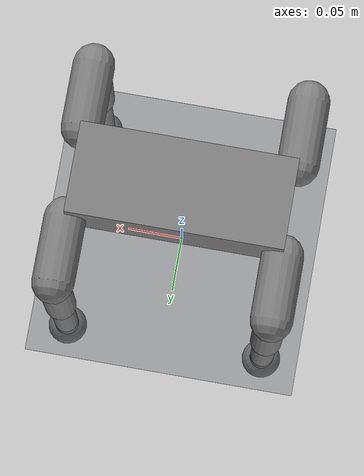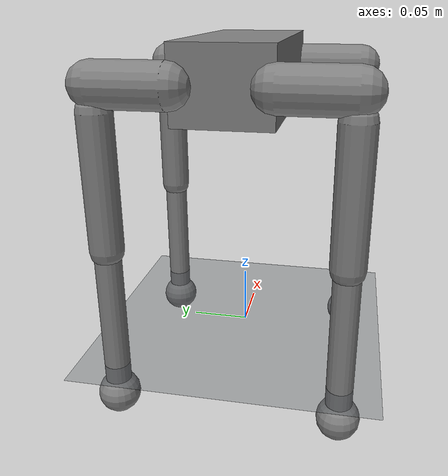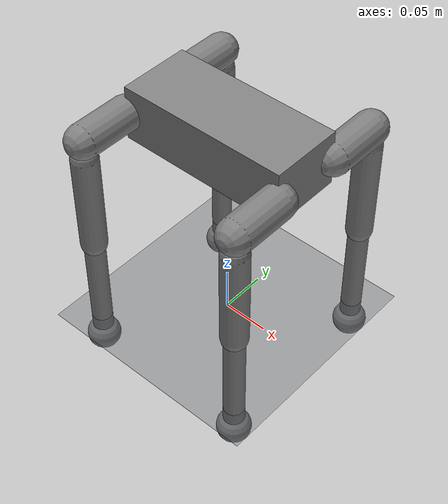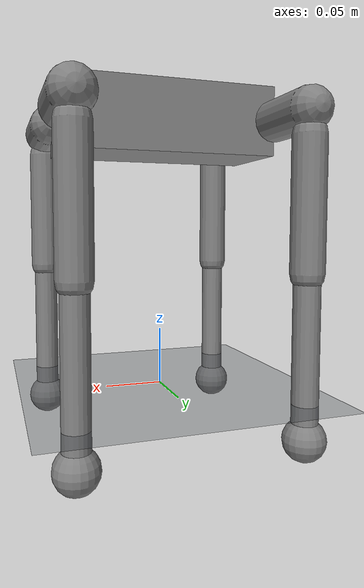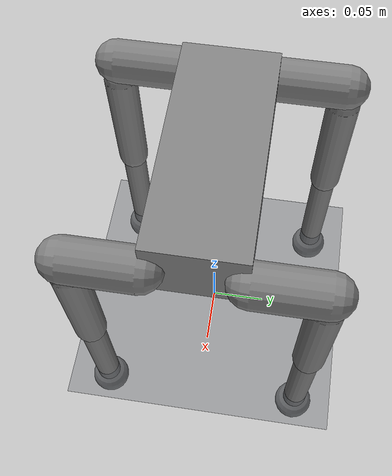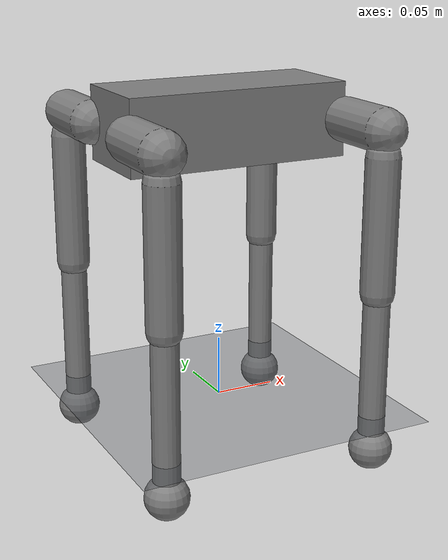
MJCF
<mujoco model="spotmicro_scene">
  <include file="spotmicro.xml"/>
  <statistic center="0 0 0.15" extent="0.8"/>
  <visual>
    <headlight diffuse="0.6 0.6 0.6" ambient="0.3 0.3 0.3"/>
    <!-- offwidth/offheight 를 올리지 않으면 오프스크린 렌더가 640x480 에서 잘린다.
         시연 영상을 1080p 로 뽑기 위한 값이다. -->
    <global azimuth="130" elevation="-20" offwidth="1920" offheight="1080"/>
  </visual>
  <asset>
    <texture name="grid" type="2d" builtin="checker" rgb1="0.2 0.22 0.25"
             rgb2="0.28 0.30 0.33" width="300" height="300"/>
    <material name="grid" texture="grid" texrepeat="6 6" reflectance="0.05"/>
  </asset>
  <worldbody>
    <light pos="0 0 2" dir="0 0 -1" directional="true"/>
    <geom name="floor" type="plane" size="0 0 0.05" material="grid"/>
    <camera name="track" mode="trackcom" pos="0 -1.2 0.5" xyaxes="1 0 0 0 0.4 1"/>
  </worldbody>
</mujoco>

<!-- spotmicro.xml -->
<mujoco model="spotmicro">
  <!-- rl/gen_mjcf.py 가 Kinematics/kinematics.py 에서 생성한다. 직접 고치지 말 것. -->
  <!-- l1=56 l2=20 l3=110 l4=135 L=185 W=78 (mm, work11 §6.25 실측) -->
  <compiler angle="radian" autolimits="true"
            inertiafromgeom="auto" inertiagrouprange="0 0"/>
  <option timestep="0.004" iterations="10" solver="Newton" cone="elliptic"/>

  <default>
    <geom group="0" condim="3" friction="0.9 0.02 0.001"/>
    <joint type="hinge" armature="0.008" damping="0.05" frictionloss="0.05"/>
    <position kp="25" kv="0.315" forcerange="-3.0 3.0"/>
  </default>

  <worldbody>
    <body name="trunk" pos="0 0 0.2350">
      <freejoint name="root"/>
      <inertial pos="-0.0470 0 0" mass="1.18" diaginertia="0.000952 0.003719 0.003964"/>
      <geom name="trunk" type="box" size="0.0925 0.0390 0.0300" mass="1.18"/>
      <site name="imu" pos="0 0 0"/>

      <body name="FL_hip" pos="0.0925 0.0390 0">
        <joint name="FL_shoulder" axis="1 0 0" range="-1.449 1.693"/>
        <geom name="FL_hip" type="capsule" mass="0.1" fromto="0 0 0 0 0.0560 0" size="0.018"/>
        <body name="FL_upper" pos="0 0.0560 -0.0200">
          <joint name="FL_leg" axis="0 1 0" range="-1.501 1.641"/>
          <geom name="FL_upper" type="capsule" mass="0.11" fromto="0 0 0 0 0 -0.1100" size="0.014"/>
          <body name="FL_lower" pos="0 0 -0.1100">
            <joint name="FL_foot" axis="0 1 0" range="-2.950 0.192"/>
            <geom name="FL_lower" type="capsule" mass="0.04" fromto="0 0 0 0 0 -0.1350" size="0.011"/>
            <geom name="FL_foot" type="sphere" mass="0.005" pos="0 0 -0.1350" size="0.012" solref="0.015 1"/>
            <site name="FL_foot" type="sphere" size="0.018" pos="0 0 -0.1350"/>
          </body>
        </body>
      </body>

      <body name="FR_hip" pos="0.0925 -0.0390 0">
        <joint name="FR_shoulder" axis="1 0 0" range="-1.658 1.484"/>
        <geom name="FR_hip" type="capsule" mass="0.1" fromto="0 0 0 0 -0.0560 0" size="0.018"/>
        <body name="FR_upper" pos="0 -0.0560 -0.0200">
          <joint name="FR_leg" axis="0 1 0" range="-1.676 1.466"/>
          <geom name="FR_upper" type="capsule" mass="0.11" fromto="0 0 0 0 0 -0.1100" size="0.014"/>
          <body name="FR_lower" pos="0 0 -0.1100">
            <joint name="FR_foot" axis="0 1 0" range="-2.705 0.436"/>
            <geom name="FR_lower" type="capsule" mass="0.04" fromto="0 0 0 0 0 -0.1350" size="0.011"/>
            <geom name="FR_foot" type="sphere" mass="0.005" pos="0 0 -0.1350" size="0.012" solref="0.015 1"/>
            <site name="FR_foot" type="sphere" size="0.018" pos="0 0 -0.1350"/>
          </body>
        </body>
      </body>

      <body name="RL_hip" pos="-0.0925 0.0390 0">
        <joint name="RL_shoulder" axis="1 0 0" range="-1.518 1.623"/>
        <geom name="RL_hip" type="capsule" mass="0.1" fromto="0 0 0 0 0.0560 0" size="0.018"/>
        <body name="RL_upper" pos="0 0.0560 -0.0200">
          <joint name="RL_leg" axis="0 1 0" range="-1.658 1.484"/>
          <geom name="RL_upper" type="capsule" mass="0.11" fromto="0 0 0 0 0 -0.1100" size="0.014"/>
          <body name="RL_lower" pos="0 0 -0.1100">
            <joint name="RL_foot" axis="0 1 0" range="-2.880 0.262"/>
            <geom name="RL_lower" type="capsule" mass="0.04" fromto="0 0 0 0 0 -0.1350" size="0.011"/>
            <geom name="RL_foot" type="sphere" mass="0.005" pos="0 0 -0.1350" size="0.012" solref="0.015 1"/>
            <site name="RL_foot" type="sphere" size="0.018" pos="0 0 -0.1350"/>
          </body>
        </body>
      </body>

      <body name="RR_hip" pos="-0.0925 -0.0390 0">
        <joint name="RR_shoulder" axis="1 0 0" range="-1.763 1.379"/>
        <geom name="RR_hip" type="capsule" mass="0.1" fromto="0 0 0 0 -0.0560 0" size="0.018"/>
        <body name="RR_upper" pos="0 -0.0560 -0.0200">
          <joint name="RR_leg" axis="0 1 0" range="-1.763 1.379"/>
          <geom name="RR_upper" type="capsule" mass="0.11" fromto="0 0 0 0 0 -0.1100" size="0.014"/>
          <body name="RR_lower" pos="0 0 -0.1100">
            <joint name="RR_foot" axis="0 1 0" range="-2.793 0.349"/>
            <geom name="RR_lower" type="capsule" mass="0.04" fromto="0 0 0 0 0 -0.1350" size="0.011"/>
            <geom name="RR_foot" type="sphere" mass="0.005" pos="0 0 -0.1350" size="0.012" solref="0.015 1"/>
            <site name="RR_foot" type="sphere" size="0.018" pos="0 0 -0.1350"/>
          </body>
        </body>
      </body>
    </body>
  </worldbody>

  <actuator>
    <position name="FL_shoulder" joint="FL_shoulder"/>
    <position name="FL_leg" joint="FL_leg"/>
    <position name="FL_foot" joint="FL_foot"/>
    <position name="FR_shoulder" joint="FR_shoulder" kp="25" kv="0.263" forcerange="-2.5 2.5"/>   <!-- Futaba 25kg -->
    <position name="FR_leg" joint="FR_leg"/>
    <position name="FR_foot" joint="FR_foot"/>
    <position name="RL_shoulder" joint="RL_shoulder"/>
    <position name="RL_leg" joint="RL_leg"/>
    <position name="RL_foot" joint="RL_foot"/>
    <position name="RR_shoulder" joint="RR_shoulder"/>
    <position name="RR_leg" joint="RR_leg"/>
    <position name="RR_foot" joint="RR_foot"/>
  </actuator>

  <sensor>
    <gyro name="gyro" site="imu"/>
    <framequat name="orient" objtype="site" objname="imu"/>
    <framelinvel name="base_vel" objtype="site" objname="imu"/>
    <touch name="FL_touch" site="FL_foot"/>
    <touch name="FR_touch" site="FR_foot"/>
    <touch name="RL_touch" site="RL_foot"/>
    <touch name="RR_touch" site="RR_foot"/>
  </sensor>
</mujoco>
